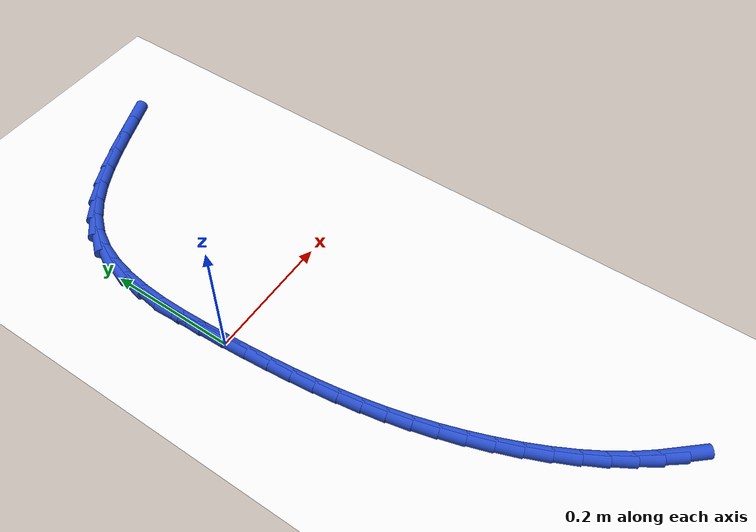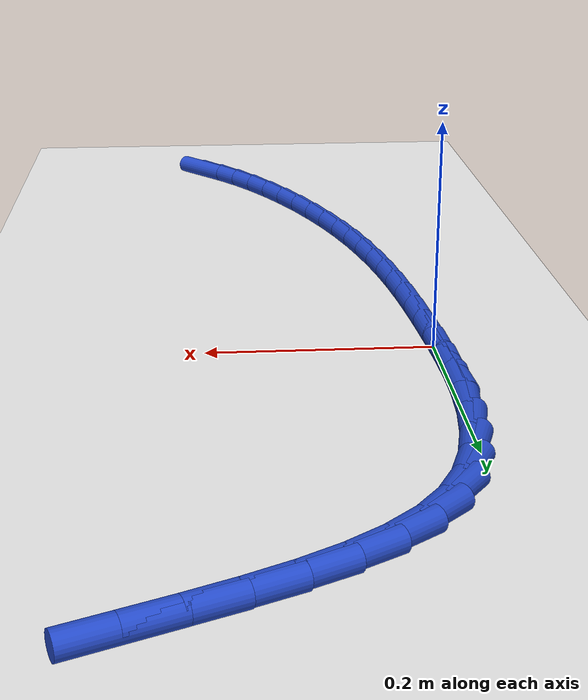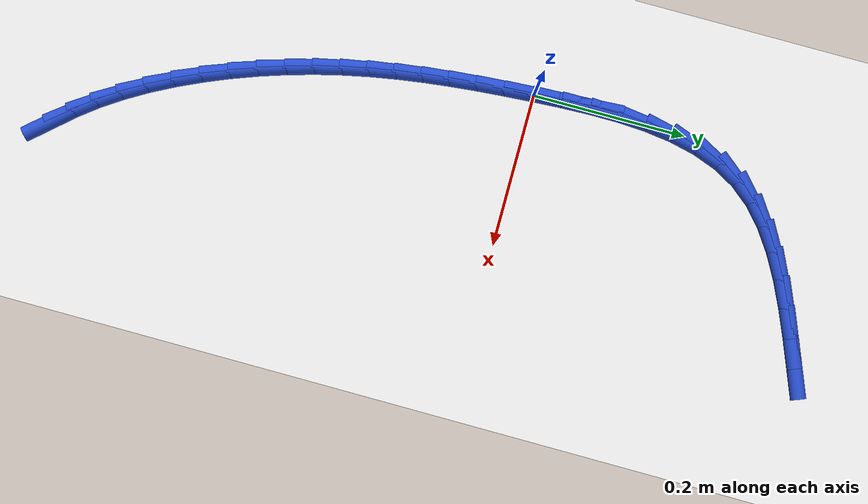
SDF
<sdf version="1.6">
 <world name="default">
  <model name="ground_plane">
   <static>1</static>
   <link name="link">
    <collision name="collision">
     <geometry><plane><normal>0 0 1</normal><size>100 100</size></plane></geometry>
     <surface><friction><ode><mu>100</mu><mu2>50</mu2></ode></friction></surface>
    </collision>
    <visual name="visual">
     <cast_shadows>0</cast_shadows>
     <geometry><plane><normal>0 0 1</normal><size>100 100</size></plane></geometry>
     <material>
      <script><uri>file://media/materials/scripts/gazebo.material</uri><name>Gazebo/WhiteGlow</name></script>
     </material>
    </visual>
   </link>
  </model>
  <model name="line">
   <link name="link_0">
    <pose>-1.3010426069826053e-18 -7.632783294297951e-17 0.01 0 1.57 -1.5139232680995027</pose>
    <collision name="collision">
     <geometry><cylinder><radius>0.01</radius><length>0.08</length></cylinder></geometry>
    </collision>
    <visual name="visual">
     <material>
      <script><name>Gazebo/Blue</name><uri>file://media/materials/scripts/gazebo.material</uri></script>
     </material>
     <geometry><cylinder><radius>0.01</radius><length>0.08</length></cylinder></geometry>
    </visual>
   </link>
   <link name="link_1">
    <pose>-0.0021284036105607266 0.03738340013217717 0.01 0 1.57 -1.5364442885641492</pose>
    <collision name="collision">
     <geometry><cylinder><radius>0.01</radius><length>0.08</length></cylinder></geometry>
    </collision>
    <visual name="visual">
     <material>
      <script><name>Gazebo/Blue</name><uri>file://media/materials/scripts/gazebo.material</uri></script>
     </material>
     <geometry><cylinder><radius>0.01</radius><length>0.08</length></cylinder></geometry>
    </visual>
   </link>
   <link name="link_2">
    <pose>-0.0034273841131988586 0.07518230726856384 0.01 0 1.57 1.56781377270187</pose>
    <collision name="collision">
     <geometry><cylinder><radius>0.01</radius><length>0.08</length></cylinder></geometry>
    </collision>
    <visual name="visual">
     <material>
      <script><name>Gazebo/Blue</name><uri>file://media/materials/scripts/gazebo.material</uri></script>
     </material>
     <geometry><cylinder><radius>0.01</radius><length>0.08</length></cylinder></geometry>
    </visual>
   </link>
   <link name="link_3">
    <pose>-0.0033150827602514673 0.11283494203978386 0.01 0 1.57 1.5138687101963146</pose>
    <collision name="collision">
     <geometry><cylinder><radius>0.01</radius><length>0.08</length></cylinder></geometry>
    </collision>
    <visual name="visual">
     <material>
      <script><name>Gazebo/Blue</name><uri>file://media/materials/scripts/gazebo.material</uri></script>
     </material>
     <geometry><cylinder><radius>0.01</radius><length>0.08</length></cylinder></geometry>
    </visual>
   </link>
   <link name="link_4">
    <pose>-0.0012096408040556256 0.1497795250764612 0.01 0 1.57 1.4403438211716684</pose>
    <collision name="collision">
     <geometry><cylinder><radius>0.01</radius><length>0.08</length></cylinder></geometry>
    </collision>
    <visual name="visual">
     <material>
      <script><name>Gazebo/Blue</name><uri>file://media/materials/scripts/gazebo.material</uri></script>
     </material>
     <geometry><cylinder><radius>0.01</radius><length>0.08</length></cylinder></geometry>
    </visual>
   </link>
   <link name="link_5">
    <pose>0.0034708005030515982 0.18545427700921985 0.01 0 1.57 1.343230512753058</pose>
    <collision name="collision">
     <geometry><cylinder><radius>0.01</radius><length>0.08</length></cylinder></geometry>
    </collision>
    <visual name="visual">
     <material>
      <script><name>Gazebo/Blue</name><uri>file://media/materials/scripts/gazebo.material</uri></script>
     </material>
     <geometry><cylinder><radius>0.01</radius><length>0.08</length></cylinder></geometry>
    </visual>
   </link>
   <link name="link_6">
    <pose>0.011308099908733124 0.2192974184686838 0.01 0 1.57 1.2181064979412326</pose>
    <collision name="collision">
     <geometry><cylinder><radius>0.01</radius><length>0.08</length></cylinder></geometry>
    </collision>
    <visual name="visual">
     <material>
      <script><name>Gazebo/Blue</name><uri>file://media/materials/scripts/gazebo.material</uri></script>
     </material>
     <geometry><cylinder><radius>0.01</radius><length>0.08</length></cylinder></geometry>
    </visual>
   </link>
   <link name="link_7">
    <pose>0.022884116160651884 0.2507471700854769 0.01 0 1.57 1.0619224331731922</pose>
    <collision name="collision">
     <geometry><cylinder><radius>0.01</radius><length>0.08</length></cylinder></geometry>
    </collision>
    <visual name="visual">
     <material>
      <script><name>Gazebo/Blue</name><uri>file://media/materials/scripts/gazebo.material</uri></script>
     </material>
     <geometry><cylinder><radius>0.01</radius><length>0.08</length></cylinder></geometry>
    </visual>
   </link>
   <link name="link_8">
    <pose>0.038780708006470814 0.2792417524902233 0.01 0 1.57 0.8828282227197803</pose>
    <collision name="collision">
     <geometry><cylinder><radius>0.01</radius><length>0.08</length></cylinder></geometry>
    </collision>
    <visual name="visual">
     <material>
      <script><name>Gazebo/Blue</name><uri>file://media/materials/scripts/gazebo.material</uri></script>
     </material>
     <geometry><cylinder><radius>0.01</radius><length>0.08</length></cylinder></geometry>
    </visual>
   </link>
   <link name="link_9">
    <pose>0.0594199980144419 0.30435264336146 0.01 0 1.57 0.7226176003941184</pose>
    <collision name="collision">
     <geometry><cylinder><radius>0.01</radius><length>0.08</length></cylinder></geometry>
    </collision>
    <visual name="visual">
     <material>
      <script><name>Gazebo/Blue</name><uri>file://media/materials/scripts/gazebo.material</uri></script>
     </material>
     <geometry><cylinder><radius>0.01</radius><length>0.08</length></cylinder></geometry>
    </visual>
   </link>
   <link name="link_10">
    <pose>0.084377309043357 0.3263577478750683 0.01 0 1.57 0.5967472476528218</pose>
    <collision name="collision">
     <geometry><cylinder><radius>0.01</radius><length>0.08</length></cylinder></geometry>
    </collision>
    <visual name="visual">
     <material>
      <script><name>Gazebo/Blue</name><uri>file://media/materials/scripts/gazebo.material</uri></script>
     </material>
     <geometry><cylinder><radius>0.01</radius><length>0.08</length></cylinder></geometry>
    </visual>
   </link>
   <link name="link_11">
    <pose>0.11294842593145743 0.345768170795998 0.01 0 1.57 0.5031528593046318</pose>
    <collision name="collision">
     <geometry><cylinder><radius>0.01</radius><length>0.08</length></cylinder></geometry>
    </collision>
    <visual name="visual">
     <material>
      <script><name>Gazebo/Blue</name><uri>file://media/materials/scripts/gazebo.material</uri></script>
     </material>
     <geometry><cylinder><radius>0.01</radius><length>0.08</length></cylinder></geometry>
    </visual>
   </link>
   <link name="link_12">
    <pose>0.14442895878014725 0.3630951626602775 0.01 0 1.57 0.4374772014831631</pose>
    <collision name="collision">
     <geometry><cylinder><radius>0.01</radius><length>0.08</length></cylinder></geometry>
    </collision>
    <visual name="visual">
     <material>
      <script><name>Gazebo/Blue</name><uri>file://media/materials/scripts/gazebo.material</uri></script>
     </material>
     <geometry><cylinder><radius>0.01</radius><length>0.08</length></cylinder></geometry>
    </visual>
   </link>
   <link name="link_13">
    <pose>0.17811451769083034 0.37884997400393516 0.01 0 1.57 0.3955891787344779</pose>
    <collision name="collision">
     <geometry><cylinder><radius>0.01</radius><length>0.08</length></cylinder></geometry>
    </collision>
    <visual name="visual">
     <material>
      <script><name>Gazebo/Blue</name><uri>file://media/materials/scripts/gazebo.material</uri></script>
     </material>
     <geometry><cylinder><radius>0.01</radius><length>0.08</length></cylinder></geometry>
    </visual>
   </link>
   <link name="link_14">
    <pose>0.21330071276491064 0.3935438553629993 0.01 0 1.57 0.3745320510854445</pose>
    <collision name="collision">
     <geometry><cylinder><radius>0.01</radius><length>0.08</length></cylinder></geometry>
    </collision>
    <visual name="visual">
     <material>
      <script><name>Gazebo/Blue</name><uri>file://media/materials/scripts/gazebo.material</uri></script>
     </material>
     <geometry><cylinder><radius>0.01</radius><length>0.08</length></cylinder></geometry>
    </visual>
   </link>
   <link name="link_15">
    <pose>0.24928315410379207 0.4076880572734982 0.01 0 1.57 0.3727411345176775</pose>
    <collision name="collision">
     <geometry><cylinder><radius>0.01</radius><length>0.08</length></cylinder></geometry>
    </collision>
    <visual name="visual">
     <material>
      <script><name>Gazebo/Blue</name><uri>file://media/materials/scripts/gazebo.material</uri></script>
     </material>
     <geometry><cylinder><radius>0.01</radius><length>0.08</length></cylinder></geometry>
    </visual>
   </link>
   <link name="link_202">
    <pose>0.19531712327269546 -0.5839625877568067 0.01 0 1.57 -0.842987864017417</pose>
    <collision name="collision">
     <geometry><cylinder><radius>0.01</radius><length>0.08</length></cylinder></geometry>
    </collision>
    <visual name="visual">
     <material>
      <script><name>Gazebo/Blue</name><uri>file://media/materials/scripts/gazebo.material</uri></script>
     </material>
     <geometry><cylinder><radius>0.01</radius><length>0.08</length></cylinder></geometry>
    </visual>
   </link>
   <link name="link_203">
    <pose>0.1747190210035569 -0.560844071520028 0.01 0 1.57 -0.9083560391829936</pose>
    <collision name="collision">
     <geometry><cylinder><radius>0.01</radius><length>0.08</length></cylinder></geometry>
    </collision>
    <visual name="visual">
     <material>
      <script><name>Gazebo/Blue</name><uri>file://media/materials/scripts/gazebo.material</uri></script>
     </material>
     <geometry><cylinder><radius>0.01</radius><length>0.08</length></cylinder></geometry>
    </visual>
   </link>
   <link name="link_204">
    <pose>0.15517002871461444 -0.535781984089896 0.01 0 1.57 -0.9754211966045137</pose>
    <collision name="collision">
     <geometry><cylinder><radius>0.01</radius><length>0.08</length></cylinder></geometry>
    </collision>
    <visual name="visual">
     <material>
      <script><name>Gazebo/Blue</name><uri>file://media/materials/scripts/gazebo.material</uri></script>
     </material>
     <geometry><cylinder><radius>0.01</radius><length>0.08</length></cylinder></geometry>
    </visual>
   </link>
   <link name="link_205">
    <pose>0.13662356987770669 -0.5084018294394274 0.01 0 1.57 -1.034584745438008</pose>
    <collision name="collision">
     <geometry><cylinder><radius>0.01</radius><length>0.08</length></cylinder></geometry>
    </collision>
    <visual name="visual">
     <material>
      <script><name>Gazebo/Blue</name><uri>file://media/materials/scripts/gazebo.material</uri></script>
     </material>
     <geometry><cylinder><radius>0.01</radius><length>0.08</length></cylinder></geometry>
    </visual>
   </link>
   <link name="link_206">
    <pose>0.11912758588906654 -0.47896176377470795 0.01 0 1.57 -1.08661613691363</pose>
    <collision name="collision">
     <geometry><cylinder><radius>0.01</radius><length>0.08</length></cylinder></geometry>
    </collision>
    <visual name="visual">
     <material>
      <script><name>Gazebo/Blue</name><uri>file://media/materials/scripts/gazebo.material</uri></script>
     </material>
     <geometry><cylinder><radius>0.01</radius><length>0.08</length></cylinder></geometry>
    </visual>
   </link>
   <link name="link_207">
    <pose>0.10274335722880563 -0.4478092279666871 0.01 0 1.57 -1.133252137857541</pose>
    <collision name="collision">
     <geometry><cylinder><radius>0.01</radius><length>0.08</length></cylinder></geometry>
    </collision>
    <visual name="visual">
     <material>
      <script><name>Gazebo/Blue</name><uri>file://media/materials/scripts/gazebo.material</uri></script>
     </material>
     <geometry><cylinder><radius>0.01</radius><length>0.08</length></cylinder></geometry>
    </visual>
   </link>
   <link name="link_208">
    <pose>0.08753216437703674 -0.41529166288631636 0.01 0 1.57 -1.1759062218467107</pose>
    <collision name="collision">
     <geometry><cylinder><radius>0.01</radius><length>0.08</length></cylinder></geometry>
    </collision>
    <visual name="visual">
     <material>
      <script><name>Gazebo/Blue</name><uri>file://media/materials/scripts/gazebo.material</uri></script>
     </material>
     <geometry><cylinder><radius>0.01</radius><length>0.08</length></cylinder></geometry>
    </visual>
   </link>
   <link name="link_209">
    <pose>0.07355528781387148 -0.3817565094045451 0.01 0 1.57 -1.2157655047081113</pose>
    <collision name="collision">
     <geometry><cylinder><radius>0.01</radius><length>0.08</length></cylinder></geometry>
    </collision>
    <visual name="visual">
     <material>
      <script><name>Gazebo/Blue</name><uri>file://media/materials/scripts/gazebo.material</uri></script>
     </material>
     <geometry><cylinder><radius>0.01</radius><length>0.08</length></cylinder></geometry>
    </visual>
   </link>
   <link name="link_210">
    <pose>0.06087400801942178 -0.34755120839232323 0.01 0 1.57 -1.2538739276979651</pose>
    <collision name="collision">
     <geometry><cylinder><radius>0.01</radius><length>0.08</length></cylinder></geometry>
    </collision>
    <visual name="visual">
     <material>
      <script><name>Gazebo/Blue</name><uri>file://media/materials/scripts/gazebo.material</uri></script>
     </material>
     <geometry><cylinder><radius>0.01</radius><length>0.08</length></cylinder></geometry>
    </visual>
   </link>
   <link name="link_211">
    <pose>0.04954960547379965 -0.31302320072060075 0.01 0 1.57 -1.2912062584748674</pose>
    <collision name="collision">
     <geometry><cylinder><radius>0.01</radius><length>0.08</length></cylinder></geometry>
    </collision>
    <visual name="visual">
     <material>
      <script><name>Gazebo/Blue</name><uri>file://media/materials/scripts/gazebo.material</uri></script>
     </material>
     <geometry><cylinder><radius>0.01</radius><length>0.08</length></cylinder></geometry>
    </visual>
   </link>
   <link name="link_212">
    <pose>0.039643331750936484 -0.27851985795421347 0.01 0 1.57 -1.328221602960347</pose>
    <collision name="collision">
     <geometry><cylinder><radius>0.01</radius><length>0.08</length></cylinder></geometry>
    </collision>
    <visual name="visual">
     <material>
      <script><name>Gazebo/Blue</name><uri>file://media/materials/scripts/gazebo.material</uri></script>
     </material>
     <geometry><cylinder><radius>0.01</radius><length>0.08</length></cylinder></geometry>
    </visual>
   </link>
   <link name="link_213">
    <pose>0.03117019530529546 -0.24427767810615034 0.01 0 1.57 -1.3635738930651364</pose>
    <collision name="collision">
     <geometry><cylinder><radius>0.01</radius><length>0.08</length></cylinder></geometry>
    </collision>
    <visual name="visual">
     <material>
      <script><name>Gazebo/Blue</name><uri>file://media/materials/scripts/gazebo.material</uri></script>
     </material>
     <geometry><cylinder><radius>0.01</radius><length>0.08</length></cylinder></geometry>
    </visual>
   </link>
   <link name="link_214">
    <pose>0.024005121106260158 -0.21019729184903616 0.01 0 1.57 -1.3962902739980358</pose>
    <collision name="collision">
     <geometry><cylinder><radius>0.01</radius><length>0.08</length></cylinder></geometry>
    </collision>
    <visual name="visual">
     <material>
      <script><name>Gazebo/Blue</name><uri>file://media/materials/scripts/gazebo.material</uri></script>
     </material>
     <geometry><cylinder><radius>0.01</radius><length>0.08</length></cylinder></geometry>
    </visual>
   </link>
   <link name="link_215">
    <pose>0.017996609455781146 -0.17611597347365163 0.01 0 1.57 -1.4257153549248254</pose>
    <collision name="collision">
     <geometry><cylinder><radius>0.01</radius><length>0.08</length></cylinder></geometry>
    </collision>
    <visual name="visual">
     <material>
      <script><name>Gazebo/Blue</name><uri>file://media/materials/scripts/gazebo.material</uri></script>
     </material>
     <geometry><cylinder><radius>0.01</radius><length>0.08</length></cylinder></geometry>
    </visual>
   </link>
   <link name="link_216">
    <pose>0.012993160655808876 -0.14187099727077665 0.01 0 1.57 -1.4513296903851667</pose>
    <collision name="collision">
     <geometry><cylinder><radius>0.01</radius><length>0.08</length></cylinder></geometry>
    </collision>
    <visual name="visual">
     <material>
      <script><name>Gazebo/Blue</name><uri>file://media/materials/scripts/gazebo.material</uri></script>
     </material>
     <geometry><cylinder><radius>0.01</radius><length>0.08</length></cylinder></geometry>
    </visual>
   </link>
   <link name="link_217">
    <pose>0.008843275008294148 -0.10729963753119379 0.01 0 1.57 -1.4727721945648375</pose>
    <collision name="collision">
     <geometry><cylinder><radius>0.01</radius><length>0.08</length></cylinder></geometry>
    </collision>
    <visual name="visual">
     <material>
      <script><name>Gazebo/Blue</name><uri>file://media/materials/scripts/gazebo.material</uri></script>
     </material>
     <geometry><cylinder><radius>0.01</radius><length>0.08</length></cylinder></geometry>
    </visual>
   </link>
   <link name="link_218">
    <pose>0.005395452815187397 -0.07223916854568307 0.01 0 1.57 -1.4898458756410617</pose>
    <collision name="collision">
     <geometry><cylinder><radius>0.01</radius><length>0.08</length></cylinder></geometry>
    </collision>
    <visual name="visual">
     <material>
      <script><name>Gazebo/Blue</name><uri>file://media/materials/scripts/gazebo.material</uri></script>
     </material>
     <geometry><cylinder><radius>0.01</radius><length>0.08</length></cylinder></geometry>
    </visual>
   </link>
   <link name="link_219">
    <pose>0.0024981943784391832 -0.03652686460502526 0.01 0 1.57 -1.5025093255552238</pose>
    <collision name="collision">
     <geometry><cylinder><radius>0.01</radius><length>0.08</length></cylinder></geometry>
    </collision>
    <visual name="visual">
     <material>
      <script><name>Gazebo/Blue</name><uri>file://media/materials/scripts/gazebo.material</uri></script>
     </material>
     <geometry><cylinder><radius>0.01</radius><length>0.08</length></cylinder></geometry>
    </visual>
   </link>
   <link name="link_220">
    <pose>1.474514954580286e-17 -2.636779683484747e-16 0.01 0 1.57 -1.5108580503221078</pose>
    <collision name="collision">
     <geometry><cylinder><radius>0.01</radius><length>0.08</length></cylinder></geometry>
    </collision>
    <visual name="visual">
     <material>
      <script><name>Gazebo/Blue</name><uri>file://media/materials/scripts/gazebo.material</uri></script>
     </material>
     <geometry><cylinder><radius>0.01</radius><length>0.08</length></cylinder></geometry>
    </visual>
   </link>
   <link name="link_221">
    <pose>-0.0022506300181793734 0.037504150978608354 0.01 0 1.57 -1.5151000237089225</pose>
    <collision name="collision">
     <geometry><cylinder><radius>0.01</radius><length>0.08</length></cylinder></geometry>
    </collision>
    <visual name="visual">
     <material>
      <script><name>Gazebo/Blue</name><uri>file://media/materials/scripts/gazebo.material</uri></script>
     </material>
     <geometry><cylinder><radius>0.01</radius><length>0.08</length></cylinder></geometry>
    </visual>
   </link>
   <link name="link_222">
    <pose>-0.004405195374148643 0.07614831404002348 0.01 0 1.57 -1.5130105299053205</pose>
    <collision name="collision">
     <geometry><cylinder><radius>0.01</radius><length>0.08</length></cylinder></geometry>
    </collision>
    <visual name="visual">
     <material>
      <script><name>Gazebo/Blue</name><uri>file://media/materials/scripts/gazebo.material</uri></script>
     </material>
     <geometry><cylinder><radius>0.01</radius><length>0.08</length></cylinder></geometry>
    </visual>
   </link>
  </model>
 </world>
</sdf>
